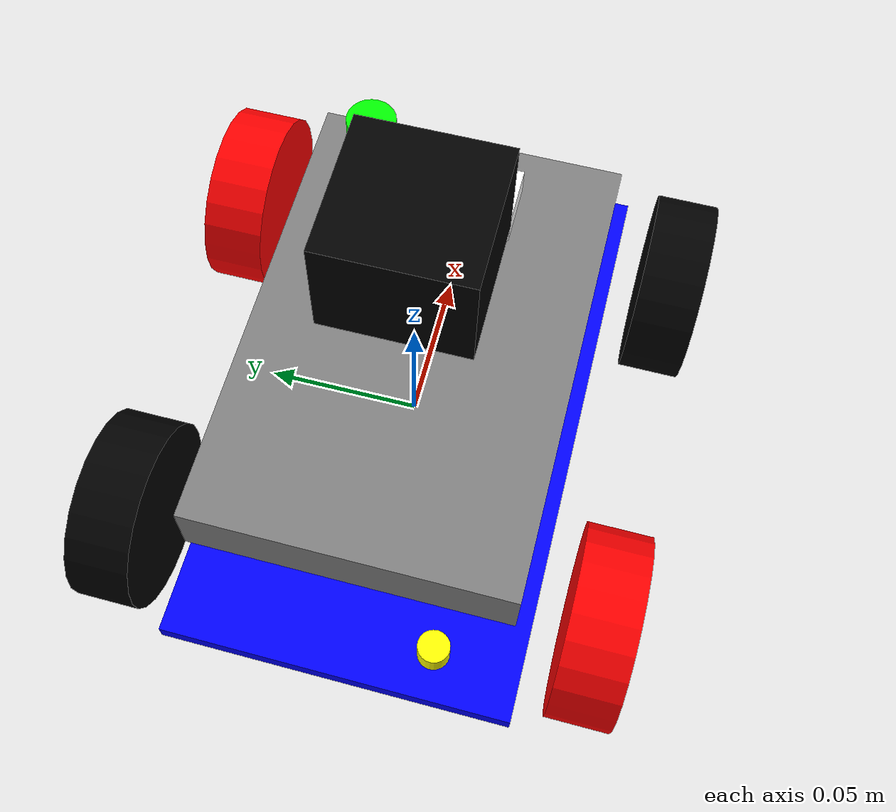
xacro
<?xml version="1.0"?>
<robot xmlns:xacro="http://www.ros.org/wiki/xacro" name="roomba">

  <!-- Robot Parameters -->
  <xacro:property name="base_length" value="0.193"/>
  <xacro:property name="base_width" value="0.110"/>
  <xacro:property name="base_height" value="0.006"/>

  <!-- Top chassis parameters -->
  <xacro:property name="top_length" value="0.15"/>
  <xacro:property name="top_width" value="0.10"/>
  <xacro:property name="top_height" value="0.02"/>
  <xacro:property name="chassis_separation" value="0.04"/>

  <xacro:property name="wheel_radius" value="0.03"/>
  <xacro:property name="wheel_thickness" value="0.02"/>
    <!-- Distance between controlled wheels (diagonal) -->
  <xacro:property name="wheel_separation" value="0.148"/>

  <!-- Material Definitions -->
  <material name="blue">
    <color rgba="0.0 0.0 1.0 1.0"/>
  </material>

  <material name="gray">
    <color rgba="0.5 0.5 0.5 1.0"/>
  </material>

  <material name="red">
    <color rgba="1.0 0.0 0.0 1.0"/>
  </material>

  <material name="green">
    <color rgba="0.0 1.0 0.0 1.0"/>
  </material>

  <material name="black">
    <color rgba="0.0 0.0 0.0 1.0"/>
  </material>

  <material name="white">
    <color rgba="1.0 1.0 1.0 1.0"/>
  </material>

  <material name="yellow">
    <color rgba="1.0 1.0 0.0 1.0"/>
  </material>

  <!-- Base Link (Bottom Chassis - for wheels) -->
  <link name="base_link">
    <visual>
      <origin xyz="0 0 ${base_height/2}" rpy="0 0 0"/>
      <geometry>
        <box size="${base_length} ${base_width} ${base_height}"/>
      </geometry>
      <material name="blue"/>
    </visual>

    <collision>
      <origin xyz="0 0 ${base_height/2}" rpy="0 0 0"/>
      <geometry>
        <box size="${base_length} ${base_width} ${base_height}"/>
      </geometry>
    </collision>

    <inertial>
      <origin xyz="0 0 ${base_height/2}" rpy="0 0 0"/>
      <mass value="1.0"/>
      <inertia ixx="0.003" ixy="0.0" ixz="0.0"
               iyy="0.003" iyz="0.0"
               izz="0.005"/>
    </inertial>
  </link>

  <!-- Top Chassis Link (for sensors) -->
  <link name="top_chassis">
    <visual>
      <origin xyz="0 0 0" rpy="0 0 0"/>
      <geometry>
        <box size="${top_length} ${top_width} ${top_height}"/>
      </geometry>
      <material name="gray"/>
    </visual>

    <collision>
      <origin xyz="0 0 0" rpy="0 0 0"/>
      <geometry>
        <box size="${top_length} ${top_width} ${top_height}"/>
      </geometry>
    </collision>

    <inertial>
      <origin xyz="0 0 0" rpy="0 0 0"/>
      <mass value="0.5"/>
      <inertia ixx="0.002" ixy="0.0" ixz="0.0"
               iyy="0.002" iyz="0.0"
               izz="0.003"/>
    </inertial>
  </link>

  <joint name="top_chassis_joint" type="fixed">
    <parent link="base_link"/>
    <child link="top_chassis"/>
    <origin xyz="0 0 ${chassis_separation}" rpy="0 0 0"/>
  </joint>

  <!-- ===== CONTROLLED WHEELS (for ros2_control) ===== -->

  <!-- Front Left Wheel - LEFT MOTOR (controlled) -->
  <link name="front_left_wheel">
    <visual>
      <origin xyz="0 0 0" rpy="${pi/2} 0 0"/>
      <geometry>
        <cylinder radius="${wheel_radius}" length="${wheel_thickness}"/>
      </geometry>
      <material name="red"/>  <!-- Red = controlled -->
    </visual>

    <collision>
      <origin xyz="0 0 0" rpy="${pi/2} 0 0"/>
      <geometry>
        <cylinder radius="${wheel_radius}" length="${wheel_thickness}"/>
      </geometry>
    </collision>

    <inertial>
      <origin xyz="0 0 0" rpy="${pi/2} 0 0"/>
      <mass value="0.1"/>
      <inertia ixx="0.0005" ixy="0.0" ixz="0.0"
               iyy="0.0005" iyz="0.0"
               izz="0.0009"/>
    </inertial>
  </link>

  <joint name="front_left_wheel_joint" type="continuous">
    <parent link="base_link"/>
    <child link="front_left_wheel"/>
    <origin xyz="0.0625 0.074 0.011" rpy="0 0 0"/>
    <axis xyz="0 1 0"/>
  </joint>

  <!-- Rear Right Wheel - RIGHT MOTOR (controlled) -->
  <link name="rear_right_wheel">
    <visual>
      <origin xyz="0 0 0" rpy="${pi/2} 0 0"/>
      <geometry>
        <cylinder radius="${wheel_radius}" length="${wheel_thickness}"/>
      </geometry>
      <material name="red"/>  <!-- Red = controlled -->
    </visual>

    <collision>
      <origin xyz="0 0 0" rpy="${pi/2} 0 0"/>
      <geometry>
        <cylinder radius="${wheel_radius}" length="${wheel_thickness}"/>
      </geometry>
    </collision>

    <inertial>
      <origin xyz="0 0 0" rpy="${pi/2} 0 0"/>
      <mass value="0.1"/>
      <inertia ixx="0.0005" ixy="0.0" ixz="0.0"
               iyy="0.0005" iyz="0.0"
               izz="0.0009"/>
    </inertial>
  </link>

  <joint name="rear_right_wheel_joint" type="continuous">
    <parent link="base_link"/>
    <child link="rear_right_wheel"/>
    <origin xyz="-0.0625 -0.074 0.011" rpy="0 0 0"/>
    <axis xyz="0 1 0"/>
  </joint>

  <link name="front_right_wheel">
    <visual>
      <origin xyz="0 0 0" rpy="${pi/2} 0 0"/>
      <geometry>
        <cylinder radius="${wheel_radius}" length="${wheel_thickness}"/>
      </geometry>
      <material name="black"/>
    </visual>

    <collision>
      <origin xyz="0 0 0" rpy="${pi/2} 0 0"/>
      <geometry>
        <cylinder radius="${wheel_radius}" length="${wheel_thickness}"/>
      </geometry>
    </collision>

    <inertial>
      <origin xyz="0 0 0" rpy="${pi/2} 0 0"/>
      <mass value="0.1"/>
      <inertia ixx="0.0005" ixy="0.0" ixz="0.0"
               iyy="0.0005" iyz="0.0"
               izz="0.0009"/>
    </inertial>
  </link>

  <joint name="front_right_wheel_joint" type="continuous">
    <parent link="base_link"/>
    <child link="front_right_wheel"/>
    <origin xyz="0.0625 -0.074 0.011" rpy="0 0 0"/>
    <axis xyz="0 1 0"/>
  </joint>

  <link name="rear_left_wheel">
    <visual>
      <origin xyz="0 0 0" rpy="${pi/2} 0 0"/>
      <geometry>
        <cylinder radius="${wheel_radius}" length="${wheel_thickness}"/>
      </geometry>
      <material name="black"/>
    </visual>

    <collision>
      <origin xyz="0 0 0" rpy="${pi/2} 0 0"/>
      <geometry>
        <cylinder radius="${wheel_radius}" length="${wheel_thickness}"/>
      </geometry>
    </collision>

    <inertial>
      <origin xyz="0 0 0" rpy="${pi/2} 0 0"/>
      <mass value="0.1"/>
      <inertia ixx="0.0005" ixy="0.0" ixz="0.0"
               iyy="0.0005" iyz="0.0"
               izz="0.0009"/>
    </inertial>
  </link>

  <joint name="rear_left_wheel_joint" type="continuous">
    <parent link="base_link"/>
    <child link="rear_left_wheel"/>
    <origin xyz="-0.0625 0.074 0.011" rpy="0 0 0"/>
    <axis xyz="0 1 0"/>
  </joint>

  <!-- Encoder Macro -->
  <xacro:macro name="encoder" params="name x y z">
    <link name="${name}_encoder">
      <visual>
        <origin xyz="0 0 0" rpy="0 0 0"/>
        <geometry>
          <cylinder radius="0.005" length="0.008"/>
        </geometry>
        <material name="yellow"/>
      </visual>

      <collision>
        <origin xyz="0 0 0" rpy="0 0 0"/>
        <geometry>
          <cylinder radius="0.005" length="0.008"/>
        </geometry>
      </collision>

      <inertial>
        <origin xyz="0 0 0" rpy="0 0 0"/>
        <mass value="0.005"/>
        <inertia ixx="0.000001" ixy="0.0" ixz="0.0"
                 iyy="0.000001" iyz="0.0"
                 izz="0.000001"/>
      </inertial>
    </link>

    <joint name="${name}_encoder_joint" type="fixed">
      <parent link="base_link"/>
      <child link="${name}_encoder"/>
      <origin xyz="${x} ${y} ${z}" rpy="0 0 0"/>
    </joint>
  </xacro:macro>

  <!-- Create Encoders (attached to base_link) -->
  <xacro:encoder name="front_left" x="0.0825" y="0.028" z="0.011"/>
  <xacro:encoder name="back_right" x="-0.0825" y="-0.028" z="0.011"/>

  <!-- IMU Link (mounted on top chassis) -->
  <link name="imu_link">
    <visual>
      <origin xyz="0 0 0" rpy="0 0 0"/>
      <geometry>
        <box size="0.02 0.02 0.01"/>
      </geometry>
      <material name="red"/>
    </visual>

    <collision>
      <origin xyz="0 0 0" rpy="0 0 0"/>
      <geometry>
        <box size="0.02 0.02 0.01"/>
      </geometry>
    </collision>

    <inertial>
      <origin xyz="0 0 0" rpy="0 0 0"/>
      <mass value="0.01"/>
      <inertia ixx="0.00001" ixy="0.0" ixz="0.0"
               iyy="0.00001" iyz="0.0"
               izz="0.00001"/>
    </inertial>
  </link>

  <joint name="imu_joint" type="fixed">
    <parent link="top_chassis"/>
    <child link="imu_link"/>
    <origin xyz="0.05 0.01 ${top_height/2 + 0.005}" rpy="0 0 0"/>
  </joint>

  <!-- Ultrasonic Sensor Link (mounted on top chassis) -->
  <link name="ultrasonic_link">
    <visual>
      <origin xyz="0 0 0" rpy="0 0 0"/>
      <geometry>
        <cylinder radius="0.008" length="0.02"/>
      </geometry>
      <material name="green"/>
    </visual>

    <collision>
      <origin xyz="0 0 0" rpy="0 0 0"/>
      <geometry>
        <cylinder radius="0.008" length="0.02"/>
      </geometry>
    </collision>

    <inertial>
      <origin xyz="0 0 0" rpy="0 0 0"/>
      <mass value="0.01"/>
      <inertia ixx="0.00001" ixy="0.0" ixz="0.0"
               iyy="0.00001" iyz="0.0"
               izz="0.00001"/>
    </inertial>
  </link>

  <joint name="ultrasonic_joint" type="fixed">
    <parent link="top_chassis"/>
    <child link="ultrasonic_link"/>
    <origin xyz="0.06 0.03 ${top_height/2 + 0.01}" rpy="0 0 0"/>
  </joint>

  <!-- Camera Link (mounted on top chassis) -->
  <link name="camera_link">
    <visual>
      <origin xyz="0 0 0" rpy="0 0 0"/>
      <geometry>
        <box size="0.02 0.02 0.01"/>
      </geometry>
      <material name="white"/>
    </visual>

    <collision>
      <origin xyz="0 0 0" rpy="0 0 0"/>
      <geometry>
        <box size="0.02 0.02 0.01"/>
      </geometry>
    </collision>

    <inertial>
      <origin xyz="0 0 0" rpy="0 0 0"/>
      <mass value="0.01"/>
      <inertia ixx="0.00001" ixy="0.0" ixz="0.0"
               iyy="0.00001" iyz="0.0"
               izz="0.00001"/>
    </inertial>
  </link>

  <joint name="camera_joint" type="fixed">
    <parent link="top_chassis"/>
    <child link="camera_link"/>
    <origin xyz="0.05 -0.01 ${top_height/2 + 0.005}" rpy="0 0 0"/>
  </joint>

  <!-- LIDAR JOINT  -->
  <link name="laser" >
  <visual>
  <origin xyz="0 0 0" rpy="0 0 0" />
  <geometry>
    <box size="0.045 0.045 0.035"/>
  </geometry>
  <material name="black"/>
  </visual>

  <collision>
  <origin xyz="0 0 0" rpy="0 0 0" />
  <geometry>
    <box size="0.045 0.045 0.035"/>
  </geometry>
  </collision>

  <inertial>
    <origin xyz="0 0 0" rpy="0 0 0"/>
    <mass value="0.01"/>
    <inertia ixx="0.00001" ixy="0.0" ixz="0.0"
              iyy="0.00001" iyz="0.0"
              izz="0.00001"/>
  </inertial>
  </link>

  <joint name="laser_joint" type="fixed">
    <parent link="top_chassis" />
    <child link="laser" />
    <origin xyz="0 0 ${top_height/2 + 0.05}" rpy="0 0 3.145"/>
  </joint>
</robot>
